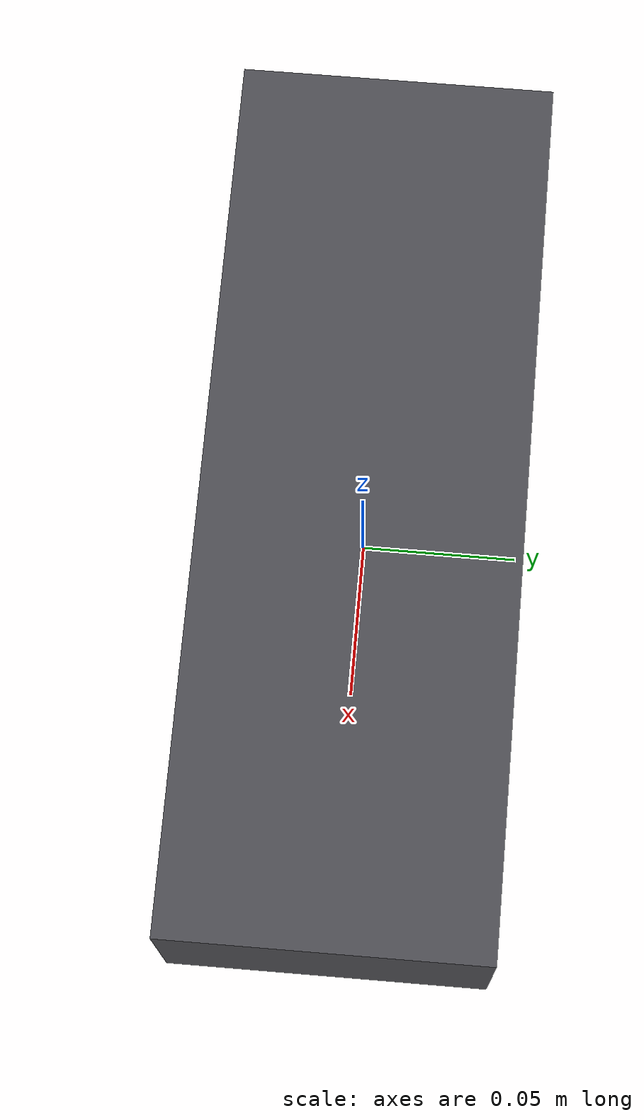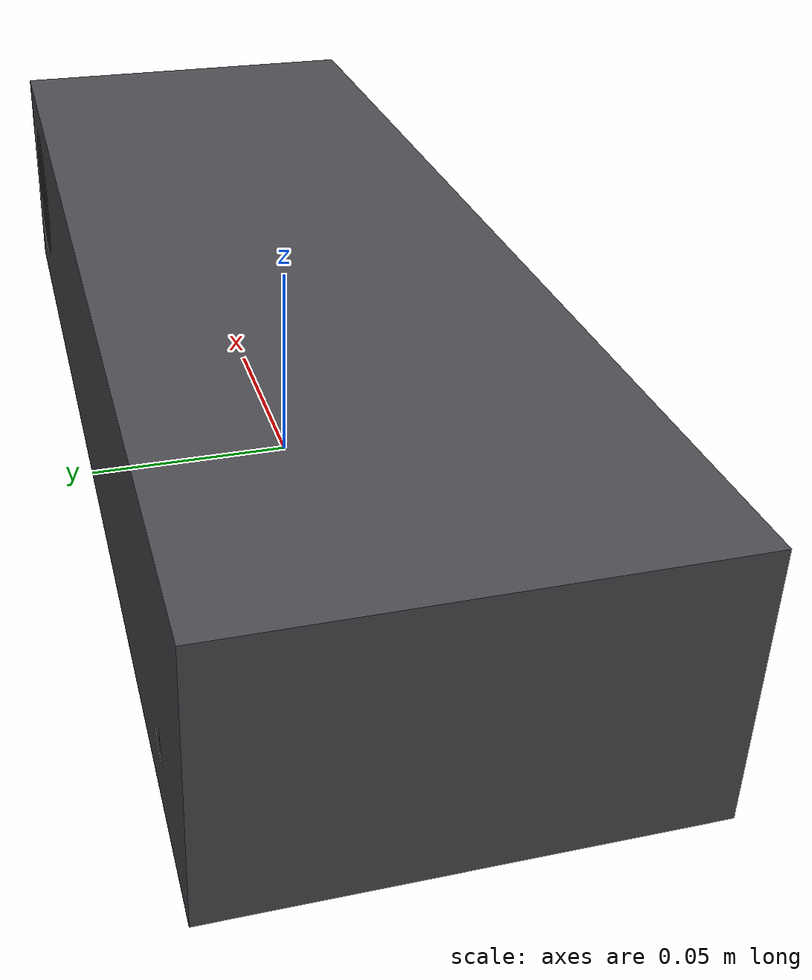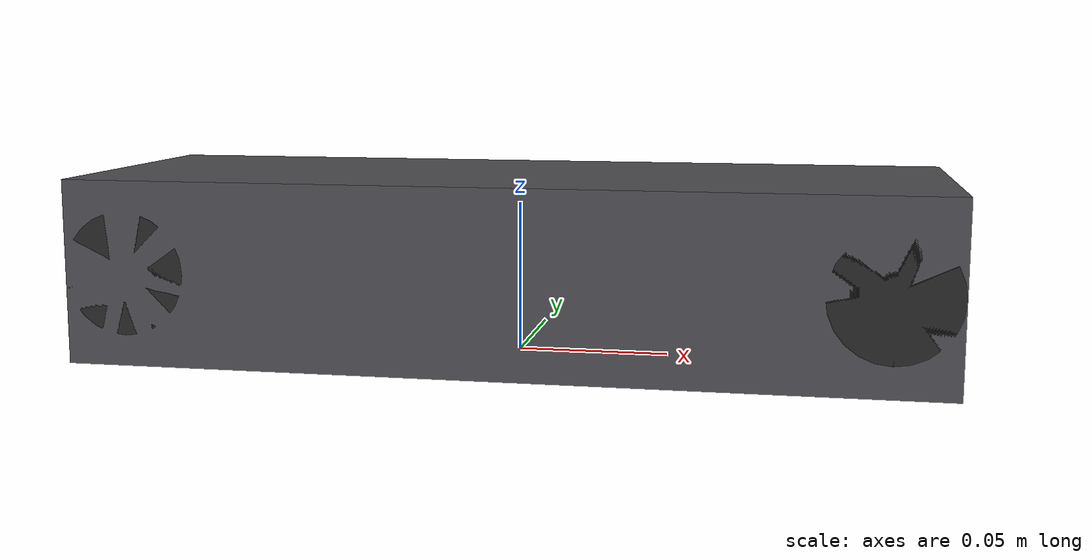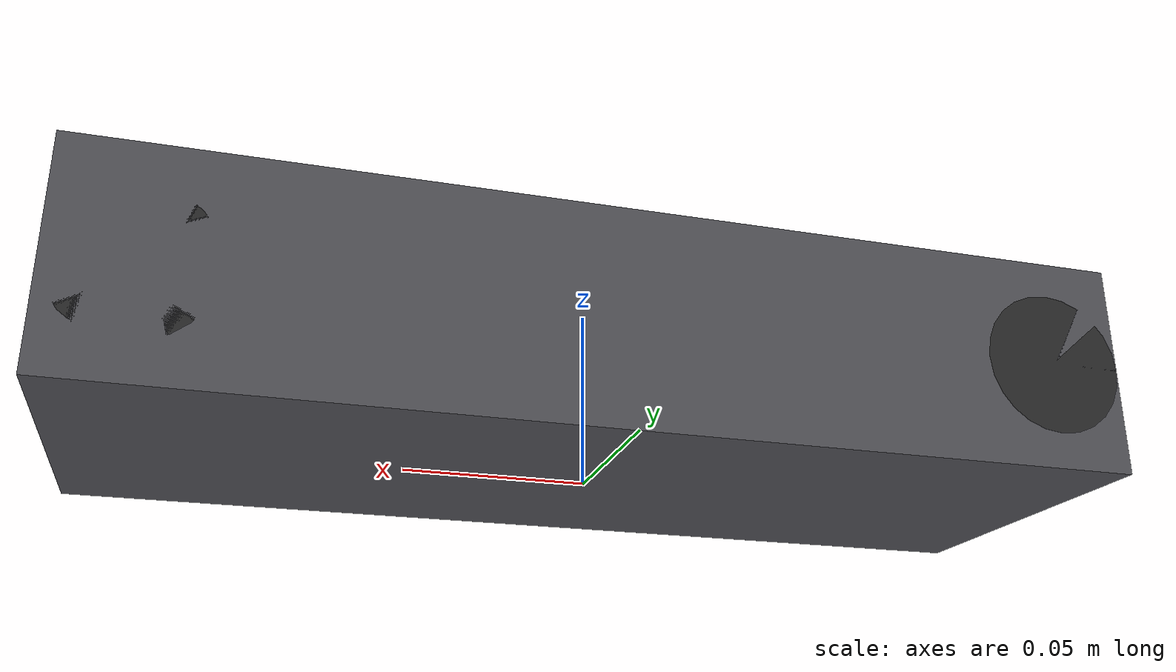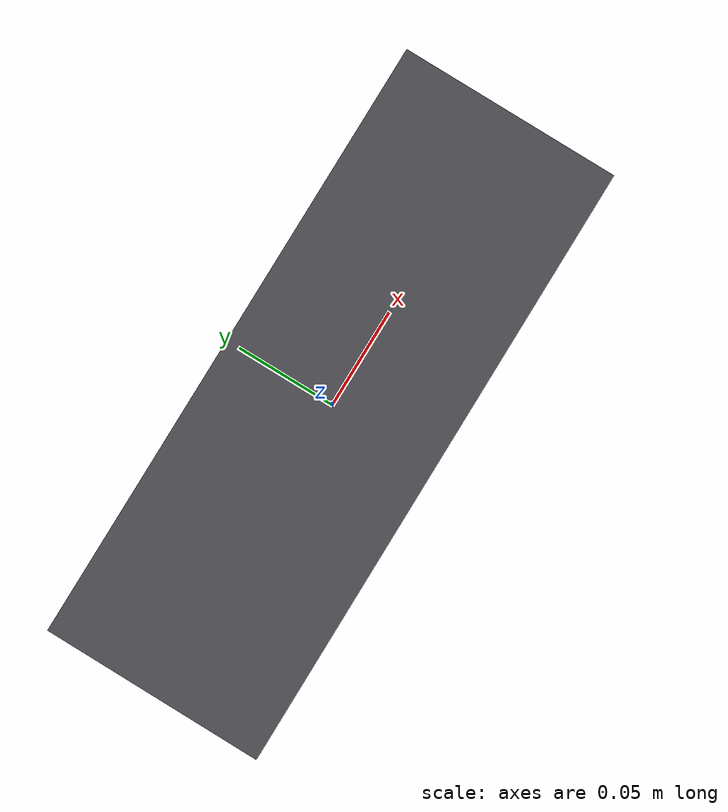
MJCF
<?xml version="1.0" encoding="utf-8"?>
<mujoco model="conveyor_belt">
  <compiler angle="radian" autolimits="true"/>
  <default>
    <default class="body"><geom contype="1" conaffinity="1"/></default>
  </default>
  <worldbody>
    <body name="base">
      <geom type="box" size="0.14 0.05 0.03" pos="0 0 0.03" rgba="0.3 0.3 0.32 1" class="body"/>
      <geom type="cylinder" size="0.02 0.05" pos="0.12 0 0.03" rgba="0.15 0.15 0.15 1" class="body" quat="0.7071068 0.7071068 0 0"/>
      <body name="drive_roller" pos="-0.12 0 0.03">
        <joint name="drive_roller_joint" type="hinge" axis="0 1 0" range="-3.14159 3.14159" damping="0.2" frictionloss="0.1"/>
  <geom type="cylinder" size="0.02 0.05" pos="0 0 0" rgba="0.15 0.15 0.15 1" class="body" quat="0.7071068 0.7071068 0 0"/>
      </body>
    </body>
  </worldbody>
</mujoco>
